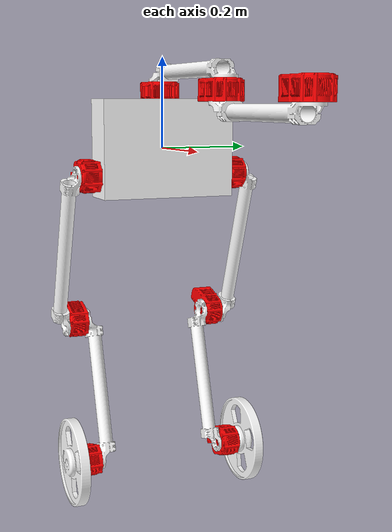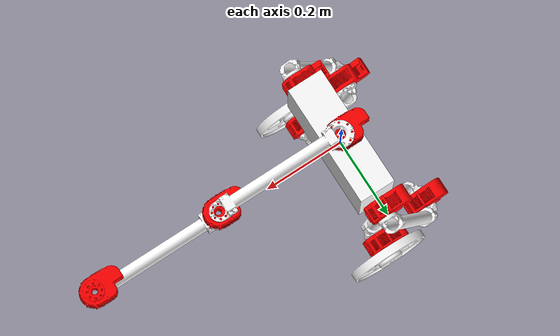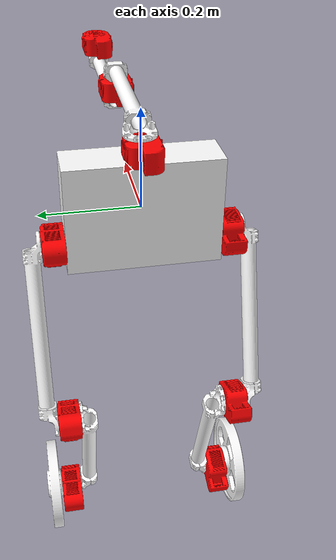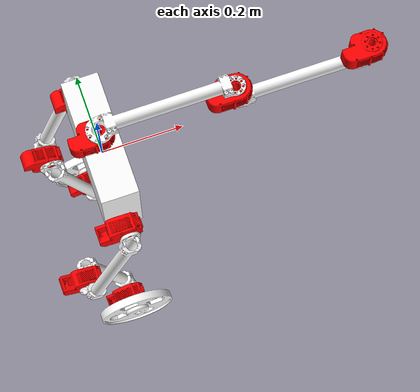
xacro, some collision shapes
<?xml version='1.0'?>
<robot xmlns:xacro="http://ros.org/wiki/xacro" name="igor">

	<!-- Included URDF/XACRO Files -->
	<xacro:include filename="$(find igor)/urdf/actuator.urdf.xacro" />
	<xacro:include filename="$(find igor)/urdf/wheel.urdf.xacro" />
	<xacro:include filename="$(find igor)/urdf/upperleg.urdf.xacro" />
	<xacro:include filename="$(find igor)/urdf/lowerleg.urdf.xacro" />
	<xacro:include filename="$(find igor)/urdf/arm.urdf.xacro" />

	  <!-- Base Size -->
	<xacro:property name="base_y_size" value="0.305" />
	<xacro:property name="base_x_size" value="0.09" />
	<xacro:property name="base_z_size" value="0.218" />
	<xacro:property name="base_y_offset" value="0.0076" />

		  <!-- Actuator Size -->
	<xacro:property name="actuator_y_size" value="0.045" />
	<xacro:property name="actuator_z_size" value="0.073" />
	<xacro:property name="actuator_x_size" value="0.11" />

	<!-- Wheel Properties -->
	<xacro:property name="wheel_length" value="0.03" />
	<xacro:property name="wheel_radius" value="0.1016" />

	<!-- Upper leg Properties -->
	<xacro:property name="upper_leg_length" value="0.35" />
	<xacro:property name="upper_leg_radius" value="0.015875" />

	<!-- Lower leg Properties -->
	<xacro:property name="lower_leg_length" value="0.3" />
	<xacro:property name="lower_leg_radius" value="0.015875" />

	<!-- Maths constant -->
	<xacro:property name="M_PI" value="3.14159"/>

	<!-- Actuator Gear Ratio -->

	<!-- Gazebo plug-in for ROS -->
  	<gazebo>
    		<plugin name="gazebo_ros_control" filename="libgazebo_ros_control.so">
      		<robotNamespace>/igor</robotNamespace>
    		</plugin>
  	</gazebo>

	<!-- Dummy link for reference -->

	<link name="base_link"/>

	<link name="chassis">
  		<inertial>
     			<origin xyz="0 0 0" rpy="0.0 0.0 0.0" />
			<mass value="${7.5}" />
      			<inertia izz="0.0632" iyz="0.000" ixz="0.00000" iyy="0.0347" ixy="0.000" ixx="0.0878" />
		</inertial>

		<visual>
			<origin rpy="${M_PI} 0.0 ${-M_PI/2}" xyz="${base_x_size/2} ${base_y_size/2+base_y_offset} ${base_z_size/2}"/>
			<geometry>
				<mesh filename="package://igor/meshes/IgorBody.STL" scale="0.001 0.001 0.001"/>
	      		</geometry>
	      		<material name="white">
	        		<color rgba="1 1 1 1"/>
	      		</material>
	    	</visual>

		<collision>
			<geometry>
				<box size="${base_x_size} ${base_y_size} ${base_z_size}"/>
	      		</geometry>
	    	</collision>
	</link>

	<joint name="base_link_to_chassis" type="fixed">
		<origin xyz="0 0 0" rpy="0 0 0" />
		<parent link="base_link" />
	        <child link="chassis" />
	</joint>

    	<gazebo reference="chassis">
      		<mu1 value="1.0"/>
      		<mu2 value="1.0"/>
      		<kp value="10000.0" />
      		<kd value="10000.0" />
      		<material>Gazebo/Grey</material>
    	</gazebo>

	<!-- imu_link for getting data in imu frame -->
    	<link name="body_imu_link"/>

	<joint name="body_imu_link_to_chassis" type="fixed">
		<origin xyz="0 0 0" rpy="0 0 0" />
		<parent link="chassis" />
	        <child link="body_imu_link" />
	</joint>

	<xacro:igor_actuator prefix="L_base" reflect="1" parent_link="chassis" flip="1">
                   <!--Origin of the joint from parent frame-->
		<origin xyz="${0.0} ${base_y_size/2+actuator_y_size/2} ${-0.06}" rpy="${0} 0 ${0}" />
	</xacro:igor_actuator>

	<xacro:igor_actuator prefix="R_base" reflect="-1" parent_link="chassis" flip="0">
		<origin xyz="${0.0} -${base_y_size/2+actuator_y_size/2} ${-0.06}" rpy="0 0 0" />
	</xacro:igor_actuator>

	<!--Right Leg-->

	<xacro:upperLeg prefix="R" reflect="-1" flip="1">
		<origin xyz="${0} -${actuator_y_size/2+upper_leg_radius} 0.0" rpy="0 0 0" />
	</xacro:upperLeg>

	<xacro:lowerLeg prefix="R" reflect="-1" flip="1">
		<origin xyz="${0} ${actuator_y_size/2+lower_leg_radius} 0.0" rpy="0 0 0" />
	</xacro:lowerLeg>

	<!--Left Leg-->

	<xacro:upperLeg prefix="L" reflect="1" flip="0">
		<origin xyz="${0} ${actuator_y_size/2+upper_leg_radius} 0.0" rpy="0 0 0" />
	</xacro:upperLeg>

	<xacro:lowerLeg prefix="L" reflect="1" flip="0">
		<origin xyz="${0} -${actuator_y_size/2+lower_leg_radius} 0.0" rpy="0 0 0" />
	</xacro:lowerLeg>

	<!--Right knee-->

	<xacro:igor_actuator prefix="R_knee" reflect="-1" parent_link="R_upperleg" flip="0">
		<origin xyz="${0} ${actuator_y_size/2+upper_leg_radius} -${upper_leg_length+actuator_z_size/3}" rpy="0 0 0" />
	</xacro:igor_actuator>

	<!--Left knee-->

	<xacro:igor_actuator prefix="L_knee" reflect="1" parent_link="L_upperleg" flip="1">
		<origin xyz="${0} -${actuator_y_size/2+upper_leg_radius} -${upper_leg_length+actuator_z_size/3}" rpy="0 0 0" />
	</xacro:igor_actuator>

	<!--Right wheel-->

	<xacro:igor_actuator prefix="R_wheel" reflect="-1" parent_link="R_lowerleg" flip="0">
		<origin xyz="${0} -${actuator_y_size-0.0038} -${lower_leg_length+actuator_z_size/2.5}" rpy="0 0 0" />
	</xacro:igor_actuator>

	<xacro:igor_wheel prefix="R" flip="0" reflect="-1" damping="${0.17}" static_friction="0.0011">
		<origin xyz="${0} -${(actuator_y_size/2)+wheel_length/2} 0.0" rpy="0 0 0" />
	</xacro:igor_wheel>

	<!--Left wheel-->

	<xacro:igor_actuator prefix="L_wheel" reflect="1" parent_link="L_lowerleg" flip="1">
		<origin xyz="${0} ${actuator_y_size-0.0038} -${lower_leg_length+actuator_z_size/2.5}" rpy="0 0 0" />
	</xacro:igor_actuator>

	<xacro:igor_wheel prefix="L" flip="1" reflect="1" damping="${0.17}" static_friction="0.0011">
		<origin xyz="${0} ${(actuator_y_size/2)+wheel_length/2} 0.0" rpy="0 0 0" />
	</xacro:igor_wheel>

	<!--Upper Arm-->
	<xacro:igor_actuator prefix="Upper_arm" reflect="1" parent_link="chassis" flip="1">
		<origin xyz="${0} ${0} ${base_z_size/2 + 0.015}" rpy="${M_PI/2} 0 0" />
	</xacro:igor_actuator>

	<xacro:arm prefix="Upper" reflect="-1" flip="0">
		<origin xyz="${0} ${actuator_y_size/2+lower_leg_radius} ${0.0}" rpy="${-M_PI/2} ${0} ${0}" />
	</xacro:arm>

	<!--Forearm-->
	<xacro:igor_actuator prefix="Fore_arm" reflect="1" parent_link="Upper_arm" flip="1">
		<origin xyz="${lower_leg_length + actuator_z_size/2.3} ${0} -${actuator_y_size/1.2}" rpy="${M_PI/2} ${0} 0" />
	</xacro:igor_actuator>

	<xacro:arm prefix="Fore" reflect="1" flip="1">
		<origin xyz="${0} -${actuator_y_size/2+lower_leg_radius} 0.0" rpy="${-M_PI/2} ${0} ${0}" />
	</xacro:arm>

	<!--Endeffector-->
	<xacro:igor_actuator prefix="Endeffector" reflect="1" parent_link="Fore_arm" flip="1">
		<origin xyz="${lower_leg_length + actuator_z_size/2.3} ${0} ${actuator_y_size/1.2}" rpy="${M_PI/2} ${0} 0" />
	</xacro:igor_actuator>

	<!--Robot Center Dummy-->

	<link name="robot_center_link">
  		<inertial>
     			<origin xyz="0 0 0" rpy="0.0 0.0 0.0" />
			<mass value="1e-3" />
      			<inertia izz="0.000001" iyz="0.0" ixz="0.0" iyy="0.000001" ixy="0.0" ixx="0.000001" />
		</inertial>
		<collision>
			<geometry>
				<box size="0.001 0.001 0.001"/>
	      		</geometry>
	    	</collision>
	</link>

	<joint name="actuator_to_robot_center" type="fixed">
		<origin xyz="${0} -${base_y_size/2+actuator_y_size/2} 0.0" rpy="0 0 0" />
		<parent link="L_wheelActuator" />
	        <child link="robot_center_link" />
	</joint>

	<gazebo reference="actuator_to_robot_center">
  		<preserveFixedJoint>true</preserveFixedJoint>
	</gazebo>

	<!-- imu_link for getting data in imu frame -->
    	<link name="center_imu_link"/>

	<joint name="center_imu_link" type="fixed">
		<origin xyz="0 0 0" rpy="0 0 0" />
		<parent link="robot_center_link" />
	        <child link="center_imu_link" />
	</joint>

	<!-- Odometery Sensor -->
	<gazebo>
		<plugin name="p3d_base_controller" filename= "libgazebo_ros_p3d.so">
			<robotNamespace>/igor</robotNamespace>
			<alwaysOn>true</alwaysOn>
			<updateRate>500.0</updateRate>
			<bodyName>base_link</bodyName>
			<topicName>odom</topicName>
			<gaussianNoise>0.0</gaussianNoise>
			<frameName>map</frameName>
			<xyzOffsets>0 0 0</xyzOffsets>
			<rpyOffsets>0 0 0</rpyOffsets>
		</plugin>
	</gazebo>

	<!-- Odometery Sensor -->
	<gazebo>
		<plugin name="p3d_base_controller" filename= "libgazebo_ros_p3d.so">
			<robotNamespace>/igor</robotNamespace>
			<alwaysOn>true</alwaysOn>
			<updateRate>500.0</updateRate>
			<bodyName>robot_center_link</bodyName>
			<topicName>centerOdom</topicName>
			<gaussianNoise>0.0</gaussianNoise>
			<frameName>map</frameName>
			<xyzOffsets>0 0 0</xyzOffsets>
			<rpyOffsets>0 0 0</rpyOffsets>
		</plugin>
	</gazebo>

	<!-- Body IMU Sensor -->

	<gazebo reference="chassis">
	    <gravity>true</gravity>
	    <sensor name="body_imu" type="imu">
	      <always_on>true</always_on>
	      <visualize>true</visualize>
	      <plugin filename="libgazebo_ros_imu_sensor.so" name="imu_plugin">
		<robotNamespace>/igor</robotNamespace>
		<topicName>body_imu/data</topicName>
		<bodyName>chassis</bodyName>
		<updateRateHZ>500.0</updateRateHZ>
		<gaussianNoise>0.0</gaussianNoise>
		<xyzOffset>0 0 0</xyzOffset>
		<rpyOffset>0 0 0</rpyOffset>
		<frameName>body_imu_link</frameName>
	      </plugin>
	      <pose>0 0 0 0 0 0</pose>
	    </sensor>
	</gazebo>

</robot>

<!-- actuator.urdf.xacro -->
<robot xmlns:xacro="http://ros.org/wiki/xacro" name="igor_actuator">

	<xacro:macro name="igor_actuator" params="prefix reflect flip parent_link *joint_pose">

		<link name="${prefix}Actuator">
			<visual>
				<origin rpy="${(flip*M_PI)+(M_PI/2)} ${M_PI} ${0}" xyz="${actuator_x_size/3} ${reflect*(-actuator_y_size/2)} ${reflect*(-actuator_z_size/2)}"/>
				<geometry>
					<mesh filename="package://igor/meshes/X8-Export.STL" scale="0.001 0.001 0.001"/>
		      		</geometry>
		      		<material name="red">
					<color rgba="1.0 0.0 0.0 1.0"/>
		      		</material>
		    	</visual>

			<collision>
				<origin rpy="0.0 0.0 0.0" xyz="0.0 0.0 0.0"/>
				<geometry>
					<box size="${actuator_x_size} ${actuator_y_size} ${actuator_z_size}"/>
		      		</geometry>
		    	</collision>

	    		<inertial>
	      			<mass value="0.46"/>
	      			<inertia iyy="0.00066" ixy="0.0" ixz="0.0" izz="0.00054" iyz="0.0" ixx="0.00028"/>
	    		</inertial>
		</link>

	    	<gazebo reference="${prefix}Actuator">
	      		<mu1 value="1.0"/>
	      		<mu2 value="1.0"/>
	      		<kp value="10000.0" />
	      		<kd value="10000.0" />
	      		<material>Gazebo/Red</material>
	    	</gazebo>

		<joint name="${prefix}Actuator_joint" type="fixed">
			<parent link="${parent_link}"/>
			<child  link="${prefix}Actuator"/>
			<xacro:insert_block name="joint_pose"/>
		</joint>

		<gazebo reference="${prefix}Actuator_joint">
  			<preserveFixedJoint>true</preserveFixedJoint>
		</gazebo>

	</xacro:macro>

</robot>

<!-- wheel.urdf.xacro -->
<robot xmlns:xacro="http://ros.org/wiki/xacro" name="igor_wheel">

	<xacro:macro name="igor_wheel" params="prefix flip reflect damping static_friction *joint_pose">

		<link name="${prefix}_wheel">
			<visual>
				<geometry>
					<mesh filename="package://igor/meshes/wheel.STL" scale="0.001 0.001 0.001"/>
				</geometry>
			    	<origin xyz="${reflect*wheel_radius} ${reflect*(wheel_radius+(wheel_length/6))} -${wheel_radius}" rpy="0 0 ${flip*M_PI}"/>
			    	<material name="white">
					<color rgba="1.0 1.0 1.0 1.0"/>
				</material>
			</visual>

			<collision>
			    <geometry>
				<cylinder radius="${wheel_radius}" length="${wheel_length}" />
			    </geometry>
			    <origin xyz="0 0 0" rpy="${M_PI/2} ${0} 0"/>
			</collision>

	    		<inertial>
	      			<mass value="0.35"/>
	      			<inertia iyy="0.001806" ixy="0.0" ixz="0.0" ixx="0.000929" iyz="0.0" izz="0.000929"/>
	    		</inertial>

		</link>

		<gazebo reference="${prefix}_wheel">
	      		<mu1 value="1e+20"/> <!--For ground friction, large value means no slip-->
	      		<mu2 value="1e+20"/>
	      		<kp value="1e+10" /> <!--HOW HARD IS SURFACE (contact stiffness), higher value means harder-->
	      		<kd value="1.0" />
			<minDepth>0.001</minDepth>
	      		<material>Gazebo/Grey</material>
	    	</gazebo>

		<joint name="${prefix}_wheel_joint" type="continuous">
			<xacro:insert_block name="joint_pose"/>
			<parent link="${prefix}_wheelActuator"/>
			<child  link="${prefix}_wheel"/>
			<limit effort="3" velocity="12"/>  <!-- effort limit in N (prismatic) or N.m (revolute), Velocity limit in m/s or rad/s -->
			<axis xyz="0 1 0"/>
			<dynamics damping="${damping}" friction="${static_friction}"/>
		</joint>

    		<transmission name="${prefix}_wheel_trans">
	      		<type>transmission_interface/SimpleTransmission</type>
	      		<actuator name="${prefix}_wheel_motor">
				<mechanicalReduction>1</mechanicalReduction>
	      		</actuator>
	      		<joint name="${prefix}_wheel_joint">
				<hardwareInterface>hardware_interface/EffortJointInterface</hardwareInterface>
	      		</joint>
    		</transmission>

		<!-- Enable the Joint Feedback -->
		<gazebo reference="${prefix}_wheel_joint">
		<provideFeedback>true</provideFeedback>
		</gazebo>

		<!-- The force_torque_sensor plugin -->

	</xacro:macro>

</robot>

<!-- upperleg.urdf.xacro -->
<robot xmlns:xacro="http://ros.org/wiki/xacro" name="upperLeg">

	<xacro:macro name="upperLeg" params="prefix reflect flip *joint_pose">

		<link name="${prefix}_upperleg">
			<visual>
				<origin rpy="${-M_PI/2} ${M_PI/2} ${flip*M_PI}" xyz="${reflect*2*upper_leg_radius} ${reflect*-3*upper_leg_radius} ${1.5*upper_leg_radius}"/>
				<geometry>
					<mesh filename="package://igor/meshes/upperLeg.STL" scale="0.001 0.001 0.001"/>
					<!--cylinder radius="0.015875" length="0.35" /-->
		      		</geometry>
		      		<material name="white">
					<color rgba="1.0 1.0 1.0 1.0"/>
		      		</material>
		    	</visual>

			<collision>
				<origin rpy="0.0 0.0 0.0" xyz="0.0 0.0 -${upper_leg_length/2}"/>
				<geometry>
					<cylinder radius="${upper_leg_radius}" length="${upper_leg_length}" />
		      		</geometry>
		    	</collision>

	    		<inertial>
				<origin rpy="${0} ${0} ${0}" xyz="${0} ${0} ${-upper_leg_length/2}"/>
	      			<mass value="0.22"/>
	      			<inertia ixx="0.00226" ixy="0.0" ixz="0.0" iyy="0.00226" iyz="0.0" izz="4.6E-05"/>
	    		</inertial>
	    	</link>

		<joint name="${prefix}_hfe_joint" type="revolute">
			<xacro:insert_block name="joint_pose"/>
			<parent link="${prefix}_baseActuator"/>
			<child  link="${prefix}_upperleg"/>
			<limit effort="${15}" lower="${1.9-M_PI/2}" upper="${1.9-M_PI/2}" velocity="10"/>
			<axis xyz="0 1 0"/>
			<dynamics damping="0.1"/>
		</joint>

		<transmission name="${prefix}_hfe_trans">
	      		<type>transmission_interface/SimpleTransmission</type>
	      		<actuator name="${prefix}_hfe_motor">
				<mechanicalReduction>1</mechanicalReduction>
	      		</actuator>
	      		<joint name="${prefix}_hfe_joint">
				<hardwareInterface>hardware_interface/EffortJointInterface</hardwareInterface>
	      		</joint>
	    	</transmission>

    		<gazebo reference="${prefix}_upperleg">
	      		<mu1 value="1.0"/>
	      		<mu2 value="1.0"/>
	      		<kp value="10000.0" />
	      		<kd value="10000.0" />
	      		<material>Gazebo/White</material>
    		</gazebo>

			<!-- IMU Sensor -->

		<!-- imu_link for getting data in imu frame -->

	</xacro:macro>

</robot>

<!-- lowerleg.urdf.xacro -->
<robot xmlns:xacro="http://ros.org/wiki/xacro" name="lowerLeg">

	<xacro:macro name="lowerLeg" params="prefix reflect flip *joint_pose">

		<link name="${prefix}_lowerleg">
			<visual>
				<origin rpy="${M_PI/2} ${M_PI/2} ${flip*M_PI}" xyz="${reflect*-2.5*lower_leg_radius} ${reflect*2*lower_leg_radius} ${actuator_z_size/1.5}"/>
				<geometry>
					<mesh filename="package://igor/meshes/lowerLeg.STL" scale="0.001 0.001 0.001"/>
					<!--cylinder radius="0.03175" length="0.3" /-->
		      		</geometry>
		      		<material name="white"/>
		    	</visual>

			<collision>
				<origin rpy="0.0 0.0 0.0" xyz="0.0 0.0 -${lower_leg_length/2}"/>
				<geometry>
					<cylinder radius="${lower_leg_radius}" length="${lower_leg_length}" /> <!-- Actual dimensions -->
		      		</geometry>

		    	</collision>

	    		<inertial>
				<origin rpy="0.0 0.0 0.0" xyz="0.0 0.0 -${lower_leg_length/2}"/>
	      			<mass value="0.2"/>
	      			<inertia ixx="0.001521" ixy="0.00" ixz="0.00" iyy="0.001521" iyz="0.000" izz="4.2E-05"/>
	    		</inertial>

	    	</link>

		<joint name="${prefix}_kfe_joint" type="revolute">
			<xacro:insert_block name="joint_pose"/>
			<parent link="${prefix}_kneeActuator"/>
			<child  link="${prefix}_lowerleg"/>
			<limit effort="15" lower="${-0.65}" upper="${-0.65}" velocity="10"/>
			<axis xyz="0 1 0"/>
			<dynamics damping="0.1"/>
		</joint>

		<transmission name="${prefix}_kfe_trans">
	      		<type>transmission_interface/SimpleTransmission</type>
	      		<actuator name="${prefix}_kfe_motor">
				<mechanicalReduction>1</mechanicalReduction>
	      		</actuator>
	      		<joint name="${prefix}_kfe_joint">
				<hardwareInterface>hardware_interface/EffortJointInterface</hardwareInterface>
	      		</joint>
	    	</transmission>

	    	<gazebo reference="${prefix}_lowerleg">
	      		<mu1 value="1.0"/>
	      		<mu2 value="1.0"/>
	      		<kp value="10000.0" />
	      		<kd value="10000.0" />
	      		<material>Gazebo/Grey</material>
	    	</gazebo>

			<!-- IMU Sensor -->

		<!-- imu_link for getting data in imu frame -->

	</xacro:macro>

</robot>

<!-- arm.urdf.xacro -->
<robot xmlns:xacro="http://ros.org/wiki/xacro" name="arm">

	<xacro:macro name="arm" params="prefix reflect flip *joint_pose">

		<link name="${prefix}_arm">
			<visual>
				<origin rpy="${flip*M_PI} ${0} ${0}" xyz="-${actuator_z_size/1.5} ${reflect*2.5*lower_leg_radius}  ${reflect*2*lower_leg_radius}"/>
				<geometry>
					<mesh filename="package://igor/meshes/lowerLeg.STL" scale="0.001 0.001 0.001"/>
		      		</geometry>
		      		<material name="white"/>
		    	</visual>

			<collision>
				<origin rpy="0.0 ${M_PI/2} 0.0" xyz="${lower_leg_length/2} 0.0 ${0}"/>
				<geometry>
					<cylinder radius="${lower_leg_radius}" length="${lower_leg_length}" /> <!-- Actual dimensions -->
		      		</geometry>

		    	</collision>

	    		<inertial>
				<origin rpy="0.0 ${M_PI/2} 0.0" xyz="${lower_leg_length/2} 0.0 ${0}"/>
	      			<mass value="0.2"/>
	      			<inertia ixx="0.001521" ixy="0.00" ixz="0.00" iyy="0.001521" iyz="0.000" izz="4.2E-05"/>
	    		</inertial>

	    	</link>

		<joint name="${prefix}_arm_joint" type="revolute">
			<xacro:insert_block name="joint_pose"/>
			<parent link="${prefix}_armActuator"/>
			<child  link="${prefix}_arm"/>
			<limit effort="5" lower="${-2}" upper="${2}" velocity="10"/>
			<axis xyz="0 0 1"/>
			<dynamics damping="0.1"/>
		</joint>

		<transmission name="${prefix}_arm_trans">
	      		<type>transmission_interface/SimpleTransmission</type>
	      		<actuator name="${prefix}_arm_motor">
				<mechanicalReduction>1</mechanicalReduction>
	      		</actuator>
	      		<joint name="${prefix}_arm_joint">
				<hardwareInterface>hardware_interface/EffortJointInterface</hardwareInterface>
	      		</joint>
	    	</transmission>

	    	<gazebo reference="${prefix}_arm">
	      		<mu1 value="1.0"/>
	      		<mu2 value="1.0"/>
	      		<kp value="10000.0" />
	      		<kd value="10000.0" />
	      		<material>Gazebo/Grey</material>
	    	</gazebo>

	</xacro:macro>

</robot>
